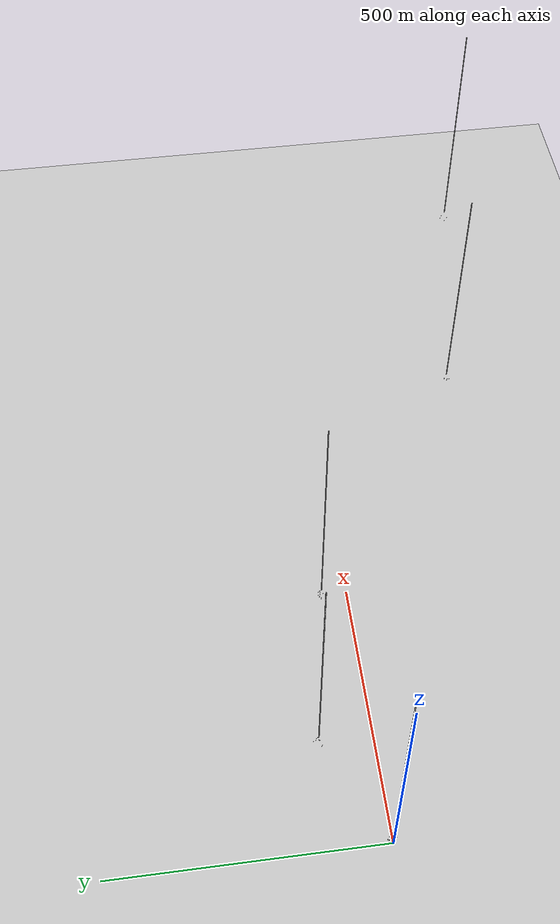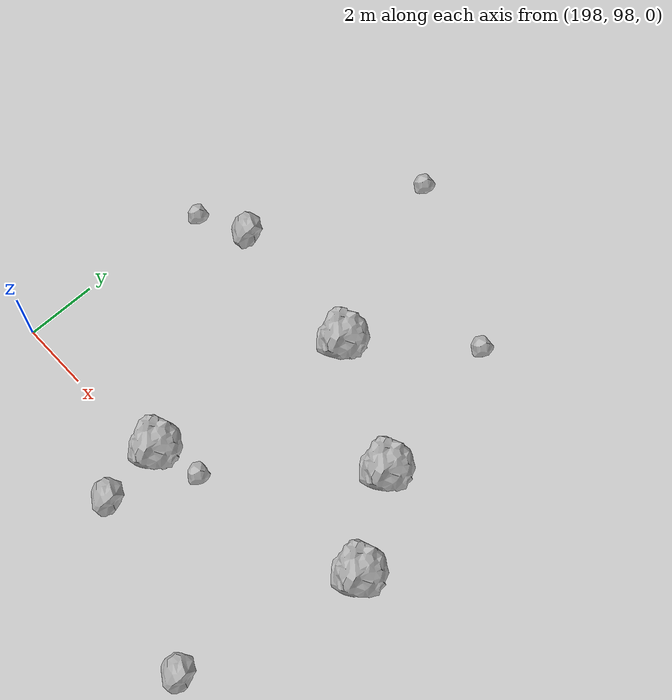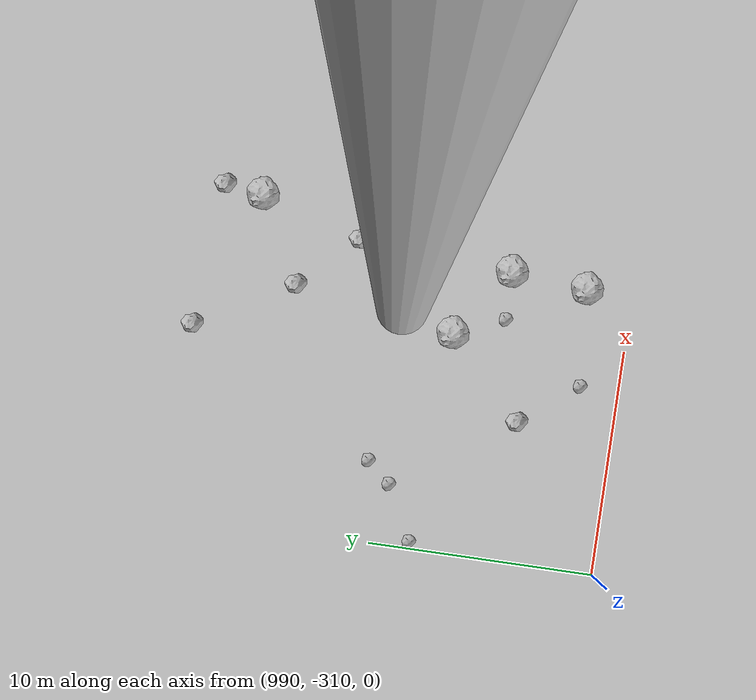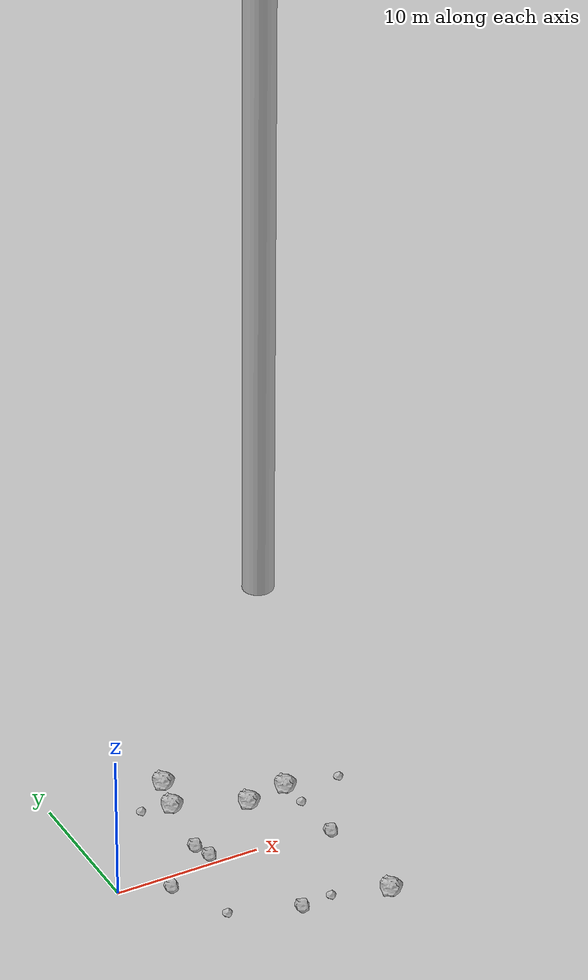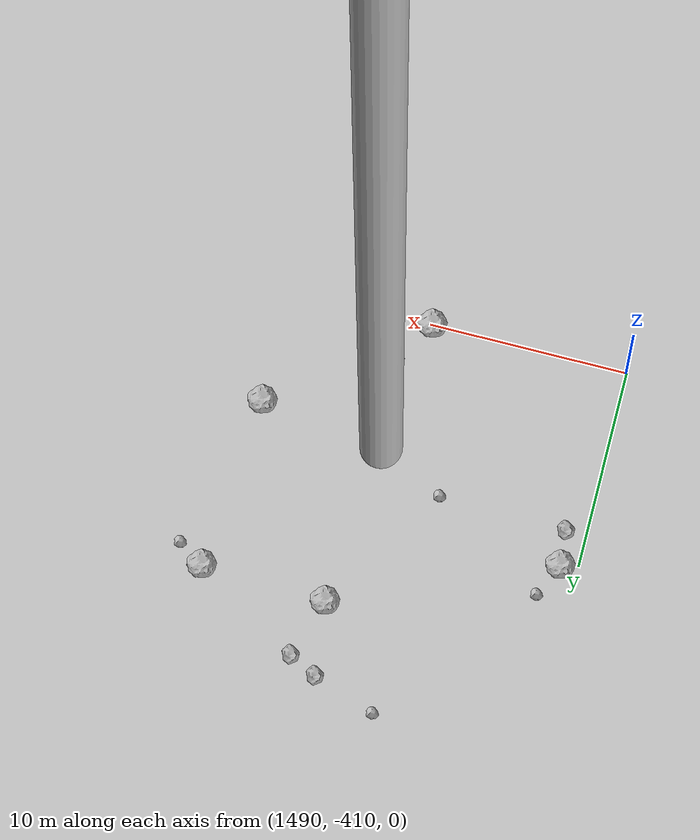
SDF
<?xml version="1.0" ?>
<sdf version="1.6">
  <world name="default">

    <include>
      <uri>model://custom_ground</uri>
    </include>

    <include>
      <uri>model://sun</uri>
    </include>

    <spherical_coordinates>
      <surface_model>EARTH_WGS84</surface_model>
      <latitude_deg>38.161479</latitude_deg>
      <longitude_deg>-122.454630</longitude_deg>
      <elevation>488.0</elevation>
      <heading_deg>90</heading_deg>
    </spherical_coordinates>

    <model name="rock1_0_0">
      <include>
        <uri>model://rock1</uri>
        <pose>15.34510201581604 -8.114820010100352 0.5 0 0 0</pose>
      </include>
    </model>
    <model name="rock1_0_1">
      <include>
        <uri>model://rock1</uri>
        <pose>7.966221185691342 9.132539945694017 0.5 0 0 0</pose>
      </include>
    </model>
    <model name="rock1_0_2">
      <include>
        <uri>model://rock1</uri>
        <pose>14.906976426447713 5.040260578493372 0.5 0 0 0</pose>
      </include>
    </model>
    <model name="rock1_0_3">
      <include>
        <uri>model://rock1</uri>
        <pose>7.267111780735307 6.531917051751478 0.5 0 0 0</pose>
      </include>
    </model>
    <model name="rock1_0_4">
      <include>
        <uri>model://rock1</uri>
        <pose>11.92833997532761 4.5577403528502085 0.5 0 0 0</pose>
      </include>
    </model>
    <model name="rock2_0_0">
      <include>
        <uri>model://rock2</uri>
        <pose>6.8944004133505965 0.7406677855940931 0.3 0 0 0</pose>
      </include>
    </model>
    <model name="rock2_0_1">
      <include>
        <uri>model://rock2</uri>
        <pose>15.09638780071329 -0.6044432377694076 0.3 0 0 0</pose>
      </include>
    </model>
    <model name="rock2_0_2">
      <include>
        <uri>model://rock2</uri>
        <pose>3.162940999389996 -1.1724970800794114 0.3 0 0 0</pose>
      </include>
    </model>
    <model name="rock2_0_3">
      <include>
        <uri>model://rock2</uri>
        <pose>9.500118768439325 -6.899039580281723 0.3 0 0 0</pose>
      </include>
    </model>
    <model name="rock2_0_4">
      <include>
        <uri>model://rock2</uri>
        <pose>6.530681874285429 2.036694693510972 0.3 0 0 0</pose>
      </include>
    </model>
    <model name="rock3_0_0">
      <include>
        <uri>model://rock3</uri>
        <pose>18.586770485838628 4.5526900634238725 0.2 0 0 0</pose>
      </include>
    </model>
    <model name="rock3_0_1">
      <include>
        <uri>model://rock3</uri>
        <pose>5.237302116225225 7.091568528942581 0.2 0 0 0</pose>
      </include>
    </model>
    <model name="rock3_0_2">
      <include>
        <uri>model://rock3</uri>
        <pose>11.703341783219518 -6.739868467054249 0.2 0 0 0</pose>
      </include>
    </model>
    <model name="rock3_0_3">
      <include>
        <uri>model://rock3</uri>
        <pose>5.020321518952995 -5.309007356480018 0.2 0 0 0</pose>
      </include>
    </model>
    <model name="rock3_0_4">
      <include>
        <uri>model://rock3</uri>
        <pose>15.01536117646063 3.148216201942951 0.2 0 0 0</pose>
      </include>
    </model>
    <model name="rock1_1_0">
      <include>
        <uri>model://rock1</uri>
        <pose>204.11874456104144 104.02529603319861 0.5 0 0 0</pose>
      </include>
    </model>
    <model name="rock1_1_1">
      <include>
        <uri>model://rock1</uri>
        <pose>203.0328591692203 98.28211067325498 0.5 0 0 0</pose>
      </include>
    </model>
    <model name="rock1_1_2">
      <include>
        <uri>model://rock1</uri>
        <pose>207.60209326480967 102.31005820189009 0.5 0 0 0</pose>
      </include>
    </model>
    <model name="rock1_1_3">
      <include>
        <uri>model://rock1</uri>
        <pose>193.27129517696304 93.7473548140157 0.5 0 0 0</pose>
      </include>
    </model>
    <model name="rock1_1_4">
      <include>
        <uri>model://rock1</uri>
        <pose>209.10637026482553 99.88853359340175 0.5 0 0 0</pose>
      </include>
    </model>
    <model name="rock2_1_0">
      <include>
        <uri>model://rock2</uri>
        <pose>203.15499098749004 96.51603520637497 0.3 0 0 0</pose>
      </include>
    </model>
    <model name="rock2_1_1">
      <include>
        <uri>model://rock2</uri>
        <pose>199.73652138444666 104.38631367035849 0.3 0 0 0</pose>
      </include>
    </model>
    <model name="rock2_1_2">
      <include>
        <uri>model://rock2</uri>
        <pose>207.82430260231624 94.96513656327488 0.3 0 0 0</pose>
      </include>
    </model>
    <model name="rock2_1_3">
      <include>
        <uri>model://rock2</uri>
        <pose>191.63762953493418 95.55525268000359 0.3 0 0 0</pose>
      </include>
    </model>
    <model name="rock2_1_4">
      <include>
        <uri>model://rock2</uri>
        <pose>198.07015878987184 91.89520339430157 0.3 0 0 0</pose>
      </include>
    </model>
    <model name="rock3_1_0">
      <include>
        <uri>model://rock3</uri>
        <pose>198.3339570942208 103.7008677210994 0.2 0 0 0</pose>
      </include>
    </model>
    <model name="rock3_1_1">
      <include>
        <uri>model://rock3</uri>
        <pose>204.25981146566096 98.62634057923859 0.2 0 0 0</pose>
      </include>
    </model>
    <model name="rock3_1_2">
      <include>
        <uri>model://rock3</uri>
        <pose>206.7988463863367 106.66870873105428 0.2 0 0 0</pose>
      </include>
    </model>
    <model name="rock3_1_3">
      <include>
        <uri>model://rock3</uri>
        <pose>202.052310976308 109.15786453834835 0.2 0 0 0</pose>
      </include>
    </model>
    <model name="rock3_1_4">
      <include>
        <uri>model://rock3</uri>
        <pose>195.717892601595 93.07131324763832 0.2 0 0 0</pose>
      </include>
    </model>
    <model name="rock1_2_0">
      <include>
        <uri>model://rock1</uri>
        <pose>507.24324551940924 55.302736289315604 0.5 0 0 0</pose>
      </include>
    </model>
    <model name="rock1_2_1">
      <include>
        <uri>model://rock1</uri>
        <pose>500.61333732797544 55.727341678247 0.5 0 0 0</pose>
      </include>
    </model>
    <model name="rock1_2_2">
      <include>
        <uri>model://rock1</uri>
        <pose>509.0296954225866 51.44479665304275 0.5 0 0 0</pose>
      </include>
    </model>
    <model name="rock1_2_3">
      <include>
        <uri>model://rock1</uri>
        <pose>496.5764774553011 53.858400871443244 0.5 0 0 0</pose>
      </include>
    </model>
    <model name="rock1_2_4">
      <include>
        <uri>model://rock1</uri>
        <pose>491.51732052854936 51.298935517200675 0.5 0 0 0</pose>
      </include>
    </model>
    <model name="rock2_2_0">
      <include>
        <uri>model://rock2</uri>
        <pose>503.2670367209711 45.95520117072791 0.3 0 0 0</pose>
      </include>
    </model>
    <model name="rock2_2_1">
      <include>
        <uri>model://rock2</uri>
        <pose>505.3255704886932 51.73751564049748 0.3 0 0 0</pose>
      </include>
    </model>
    <model name="rock2_2_2">
      <include>
        <uri>model://rock2</uri>
        <pose>501.3567400380696 52.27753928209559 0.3 0 0 0</pose>
      </include>
    </model>
    <model name="rock2_2_3">
      <include>
        <uri>model://rock2</uri>
        <pose>491.6051664868143 46.26269215777769 0.3 0 0 0</pose>
      </include>
    </model>
    <model name="rock2_2_4">
      <include>
        <uri>model://rock2</uri>
        <pose>494.258971344509 50.79636411869075 0.3 0 0 0</pose>
      </include>
    </model>
    <model name="rock3_2_0">
      <include>
        <uri>model://rock3</uri>
        <pose>504.5189575445821 45.366130793608406 0.2 0 0 0</pose>
      </include>
    </model>
    <model name="rock3_2_1">
      <include>
        <uri>model://rock3</uri>
        <pose>505.2355137965232 51.609240285949085 0.2 0 0 0</pose>
      </include>
    </model>
    <model name="rock3_2_2">
      <include>
        <uri>model://rock3</uri>
        <pose>492.72538201758846 47.88524423877723 0.2 0 0 0</pose>
      </include>
    </model>
    <model name="rock3_2_3">
      <include>
        <uri>model://rock3</uri>
        <pose>500.2810877664535 55.49057445523289 0.2 0 0 0</pose>
      </include>
    </model>
    <model name="rock3_2_4">
      <include>
        <uri>model://rock3</uri>
        <pose>497.2648143847834 48.73204441357082 0.2 0 0 0</pose>
      </include>
    </model>
    <model name="rock1_3_0">
      <include>
        <uri>model://rock1</uri>
        <pose>1002.5839988641953 -307.9539177890947 0.5 0 0 0</pose>
      </include>
    </model>
    <model name="rock1_3_1">
      <include>
        <uri>model://rock1</uri>
        <pose>999.8057565932143 -302.35308034356285 0.5 0 0 0</pose>
      </include>
    </model>
    <model name="rock1_3_2">
      <include>
        <uri>model://rock1</uri>
        <pose>1002.8647281769789 -304.56361042114935 0.5 0 0 0</pose>
      </include>
    </model>
    <model name="rock1_3_3">
      <include>
        <uri>model://rock1</uri>
        <pose>1004.7004213885627 -293.1670578668749 0.5 0 0 0</pose>
      </include>
    </model>
    <model name="rock1_3_4">
      <include>
        <uri>model://rock1</uri>
        <pose>1005.5575709403397 -298.1755474747222 0.5 0 0 0</pose>
      </include>
    </model>
    <model name="rock2_3_0">
      <include>
        <uri>model://rock2</uri>
        <pose>1003.3268558020143 -297.6967331672036 0.3 0 0 0</pose>
      </include>
    </model>
    <model name="rock2_3_1">
      <include>
        <uri>model://rock2</uri>
        <pose>998.5778719905783 -290.8602045572445 0.3 0 0 0</pose>
      </include>
    </model>
    <model name="rock2_3_2">
      <include>
        <uri>model://rock2</uri>
        <pose>996.2946951191715 -305.708780958531 0.3 0 0 0</pose>
      </include>
    </model>
    <model name="rock2_3_3">
      <include>
        <uri>model://rock2</uri>
        <pose>1000.9500369485567 -295.1498968461071 0.3 0 0 0</pose>
      </include>
    </model>
    <model name="rock2_3_4">
      <include>
        <uri>model://rock2</uri>
        <pose>1004.9124428487528 -291.43681725582064 0.3 0 0 0</pose>
      </include>
    </model>
    <model name="rock3_3_0">
      <include>
        <uri>model://rock3</uri>
        <pose>992.743486590272 -300.5084472958916 0.2 0 0 0</pose>
      </include>
    </model>
    <model name="rock3_3_1">
      <include>
        <uri>model://rock3</uri>
        <pose>990.3431949180795 -301.7507197056779 0.2 0 0 0</pose>
      </include>
    </model>
    <model name="rock3_3_2">
      <include>
        <uri>model://rock3</uri>
        <pose>1000.6849234488059 -304.600555110633 0.2 0 0 0</pose>
      </include>
    </model>
    <model name="rock3_3_3">
      <include>
        <uri>model://rock3</uri>
        <pose>993.6595786671221 -299.46120145589106 0.2 0 0 0</pose>
      </include>
    </model>
    <model name="rock3_3_4">
      <include>
        <uri>model://rock3</uri>
        <pose>998.2197112315071 -308.28082361418444 0.2 0 0 0</pose>
      </include>
    </model>
    <model name="rock1_4_0">
      <include>
        <uri>model://rock1</uri>
        <pose>1501.6905566668156 -395.25492367818555 0.5 0 0 0</pose>
      </include>
    </model>
    <model name="rock1_4_1">
      <include>
        <uri>model://rock1</uri>
        <pose>1499.9454237285536 -409.9868710214236 0.5 0 0 0</pose>
      </include>
    </model>
    <model name="rock1_4_2">
      <include>
        <uri>model://rock1</uri>
        <pose>1490.8975578643408 -399.8188219983475 0.5 0 0 0</pose>
      </include>
    </model>
    <model name="rock1_4_3">
      <include>
        <uri>model://rock1</uri>
        <pose>1508.0209044712933 -395.5216445814224 0.5 0 0 0</pose>
      </include>
    </model>
    <model name="rock1_4_4">
      <include>
        <uri>model://rock1</uri>
        <pose>1507.1676525114815 -404.22506268136317 0.5 0 0 0</pose>
      </include>
    </model>
    <model name="rock2_4_0">
      <include>
        <uri>model://rock2</uri>
        <pose>1501.2499660318533 -391.54135107417255 0.3 0 0 0</pose>
      </include>
    </model>
    <model name="rock2_4_1">
      <include>
        <uri>model://rock2</uri>
        <pose>1501.0431135667247 -405.04205614895784 0.3 0 0 0</pose>
      </include>
    </model>
    <model name="rock2_4_2">
      <include>
        <uri>model://rock2</uri>
        <pose>1491.0394574770942 -401.581980485027 0.3 0 0 0</pose>
      </include>
    </model>
    <model name="rock2_4_3">
      <include>
        <uri>model://rock2</uri>
        <pose>1501.2686867777234 -407.82023257092885 0.3 0 0 0</pose>
      </include>
    </model>
    <model name="rock2_4_4">
      <include>
        <uri>model://rock2</uri>
        <pose>1502.6661594578823 -392.25392683019055 0.3 0 0 0</pose>
      </include>
    </model>
    <model name="rock3_4_0">
      <include>
        <uri>model://rock3</uri>
        <pose>1497.4692404559958 -401.7561765311431 0.2 0 0 0</pose>
      </include>
    </model>
    <model name="rock3_4_1">
      <include>
        <uri>model://rock3</uri>
        <pose>1501.033702680993 -404.7967908402513 0.2 0 0 0</pose>
      </include>
    </model>
    <model name="rock3_4_2">
      <include>
        <uri>model://rock3</uri>
        <pose>1498.0375364322715 -390.4683483365371 0.2 0 0 0</pose>
      </include>
    </model>
    <model name="rock3_4_3">
      <include>
        <uri>model://rock3</uri>
        <pose>1491.6489244025383 -398.16796250834943 0.2 0 0 0</pose>
      </include>
    </model>
    <model name="rock3_4_4">
      <include>
        <uri>model://rock3</uri>
        <pose>1509.2991649473101 -396.40380421994575 0.2 0 0 0</pose>
      </include>
    </model>

    <model name="cylinder_1">
      <static>true</static>
      <link name="link">
        <visual name="visual">
          <geometry>
            <cylinder>
              <radius>1</radius>
              <length>500</length>
            </cylinder>
          </geometry>
        </visual>
      </link>
      <pose>10 0 270 0 0 0</pose>
    </model>

    <model name="cylinder_2">
      <static>true</static>
      <link name="link">
        <visual name="visual">
          <geometry>
            <cylinder>
              <radius>1</radius>
              <length>500</length>
            </cylinder>
          </geometry>
        </visual>
      </link>
      <pose>200 100 270 0 0 0</pose>
    </model>

    <model name="cylinder_3">
      <static>true</static>
      <link name="link">
        <visual name="visual">
          <geometry>
            <cylinder>
              <radius>1</radius>
              <length>500</length>
            </cylinder>
          </geometry>
        </visual>
      </link>
      <pose>500 50 270 0 0 0</pose>
    </model>

    <model name="cylinder_4">
      <static>true</static>
      <link name="link">
        <visual name="visual">
          <geometry>
            <cylinder>
              <radius>1</radius>
              <length>500</length>
            </cylinder>
          </geometry>
        </visual>
      </link>
      <pose>1000 -300 270 0 0 0</pose>
    </model>

    <model name="cylinder_5">
      <static>true</static>
      <link name="link">
        <visual name="visual">
          <geometry>
            <cylinder>
              <radius>1</radius>
              <length>500</length>
            </cylinder>
          </geometry>
        </visual>
      </link>
      <pose>1500 -400 270 0 0 0</pose>
    </model>

  </world>
</sdf>

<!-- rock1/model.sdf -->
<sdf version="1.6">
  <model name="rock1">
    <static>true</static> <!-- Set to true if the model should not move -->
    <pose>0 0 0 0 0 0</pose>

    <!--z offset is 0.5 for full scale-->

    <link name="link">
      <collision name="rock1_collision">
        <geometry>
          <mesh>
            <uri>model://meshes/rock1.dae</uri>
          </mesh>
        </geometry>
      </collision>
      <visual name="rock1_visual">
        <geometry>
          <mesh>
            <uri>model://meshes/rock1.dae</uri>
          </mesh>
        </geometry>
        <material>
          <script>
            <uri>model://materials/scripts/sand_pebbles.material</uri>
            <name>custom_ground/Image</name>
          </script>
        </material>
      </visual>
    </link>
  </model>
</sdf>

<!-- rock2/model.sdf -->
<sdf version="1.6">
  <model name="rock2">
    <static>true</static> <!-- Set to true if the model should not move -->
    <pose>0 0 0 0 0 0</pose>

    <!--z offset is 0.3 for full scale-->

    <link name="link">
      <collision name="rock2_collision">
        <geometry>
          <mesh>
            <uri>model://meshes/rock2.dae</uri>
          </mesh>
        </geometry>
      </collision>
      <visual name="rock2_visual">
        <geometry>
          <mesh>
            <uri>model://meshes/rock2.dae</uri>
          </mesh>
        </geometry>
        <material>
          <script>
            <uri>model://materials/scripts/sand_pebbles.material</uri>
            <name>custom_ground/Image</name>
          </script>
        </material>
      </visual>
    </link>
  </model>
</sdf>

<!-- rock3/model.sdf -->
<sdf version="1.6">
  <model name="rock3">
    <static>true</static> <!-- Set to true if the model should not move -->
    <pose>0 0 0 0 0 0</pose>

    <!--z offset is 0.2 for full scale-->

    <link name="link">
      <collision name="rock3_collision">
        <geometry>
          <mesh>
            <uri>model://meshes/rock3.dae</uri>
          </mesh>
        </geometry>
      </collision>
      <visual name="rock3_visual">
        <geometry>
          <mesh>
            <uri>model://meshes/rock3.dae</uri>
          </mesh>
        </geometry>
        <material>
          <script>
            <uri>model://materials/scripts/sand_pebbles.material</uri>
            <name>custom_ground/Image</name>
          </script>
        </material>
      </visual>
    </link>
  </model>
</sdf>

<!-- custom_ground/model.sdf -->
<sdf version="1.6">
  <model name="custom_ground">
    <static>true</static> <!-- Ground is static and immovable -->
    <link name="ground_link">
      <pose>240 0 0 0 0 0</pose> <!-- Position and orientation relative to the world -->
      <!-- Visual Representation -->
      <visual name="ground_visual">
        <geometry>
          <plane>
            <normal>0 0 1</normal> <!-- Upward facing plane -->
            <size>500 500</size> <!-- Size of the plane -->
          </plane>
        </geometry>
        <material>
          <script>
            <uri>model://materials/scripts/sand_pebbles.material</uri>
            <name>custom_ground/Image</name>
          </script>
        </material>
      </visual>

      <!-- Collision Representation -->
      <collision name="ground_collision">
        <geometry>
          <plane>
            <normal>0 0 1</normal>
            <size>100 100</size>
          </plane>
        </geometry>
      </collision>

    </link>
  </model>
</sdf>
